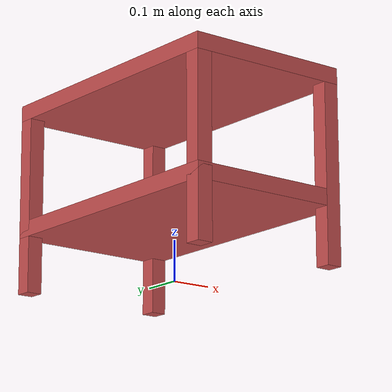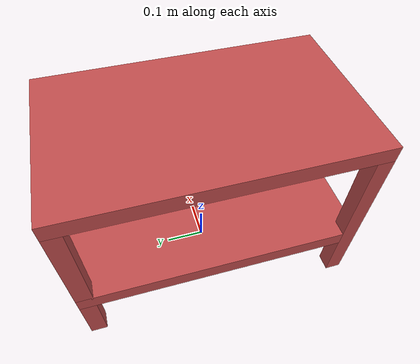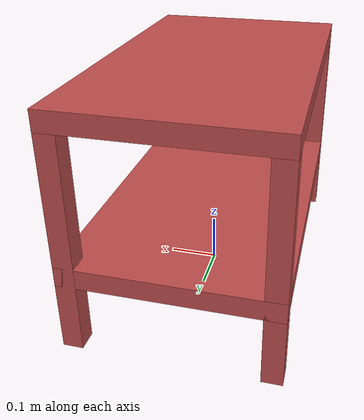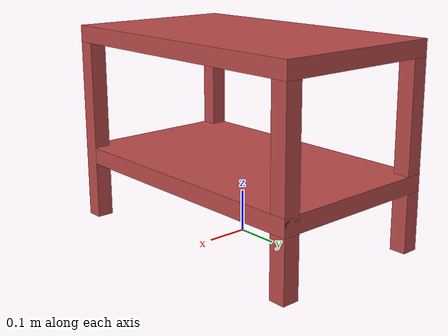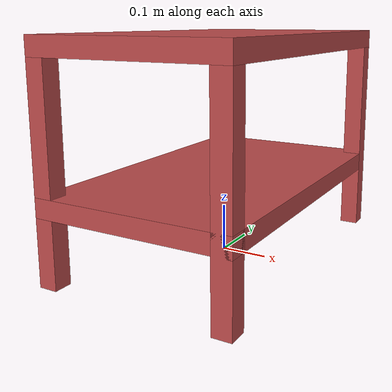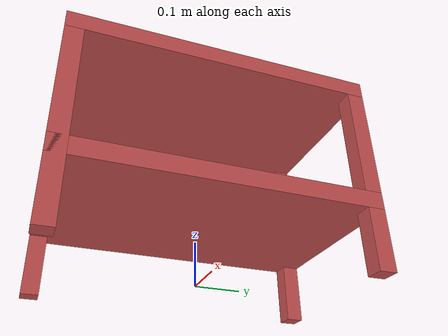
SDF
<?xml version="1.0"?>
<sdf version="1.6">
  <model name="rwc2016/ikea_table_red">
    <link name="1_link">
      <collision name="1_col">
        <geometry>
          <box>
            <size>0.42 0.7 0.04</size>
          </box>
        </geometry>
      </collision>
      <visual name="1_vis">
        <geometry>
          <box>
            <size>0.42 0.7 0.04</size>
          </box>
        </geometry>
        <material>
          <ambient>0.75 0.3 0.3 1</ambient>
        </material>
      </visual>
      <pose>0 0 0.46 0 0 0</pose>
    </link>
    <link name="2_link">
      <collision name="2_col">
        <geometry>
          <box>
            <size>0.42 0.7 0.04</size>
          </box>
        </geometry>
      </collision>
      <visual name="2_vis">
        <geometry>
          <box>
            <size>0.42 0.7 0.04</size>
          </box>
        </geometry>
        <material>
          <ambient>0.75 0.3 0.3 1</ambient>
        </material>
      </visual>
      <pose>0 0 0.16 0 0 0</pose>
    </link>
    <link name="3_link">
      <collision name="3_col">
        <geometry>
          <box>
            <size>0.04 0.04 0.44</size>
          </box>
        </geometry>
      </collision>
      <visual name="3_vis">
        <geometry>
          <box>
            <size>0.04 0.04 0.44</size>
          </box>
        </geometry>
        <material>
          <ambient>0.75 0.3 0.3 1</ambient>
        </material>
      </visual>
      <pose>-0.19 -0.33 0.22 0 0 0</pose>
    </link>
    <link name="4_link">
      <collision name="4_col">
        <geometry>
          <box>
            <size>0.04 0.04 0.44</size>
          </box>
        </geometry>
      </collision>
      <visual name="4_vis">
        <geometry>
          <box>
            <size>0.04 0.04 0.44</size>
          </box>
        </geometry>
        <material>
          <ambient>0.75 0.3 0.3 1</ambient>
        </material>
      </visual>
      <pose>0.19 -0.33 0.22 0 0 0</pose>
    </link>
    <link name="5_link">
      <collision name="5_col">
        <geometry>
          <box>
            <size>0.04 0.04 0.44</size>
          </box>
        </geometry>
      </collision>
      <visual name="5_vis">
        <geometry>
          <box>
            <size>0.04 0.04 0.44</size>
          </box>
        </geometry>
        <material>
          <ambient>0.75 0.3 0.3 1</ambient>
        </material>
      </visual>
      <pose>-0.19 0.33 0.22 0 0 0</pose>
    </link>
    <link name="6_link">
      <collision name="6_col">
        <geometry>
          <box>
            <size>0.04 0.04 0.44</size>
          </box>
        </geometry>
      </collision>
      <visual name="6_vis">
        <geometry>
          <box>
            <size>0.04 0.04 0.44</size>
          </box>
        </geometry>
        <material>
          <ambient>0.75 0.3 0.3 1</ambient>
        </material>
      </visual>
      <pose>0.19 0.33 0.22 0 0 0</pose>
    </link>
    <link name="on_top_of">
      <virtual_volume name="on_top_of_vv">
        <geometry>
          <box>
            <size>0.36 0.64 0.25</size>
          </box>
        </geometry>
        <pose>0.0 0.0 0.625 0 0 0</pose>
      </virtual_volume>
    </link>
    <link name="in_front_of">
      <virtual_volume name="in_front_of_vv">
        <geometry>
          <box>
            <size>0.2 0.5 0.01</size>
          </box>
        </geometry>
        <pose>0.71 0.0 0.005 0 0 0</pose>
      </virtual_volume>
    </link>
    <static>true</static>
  </model>
</sdf>
